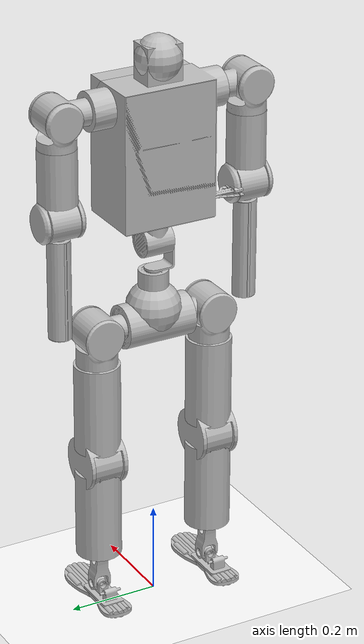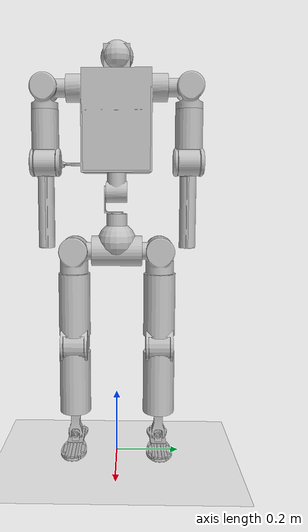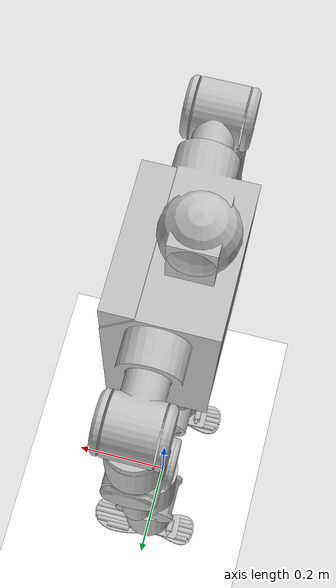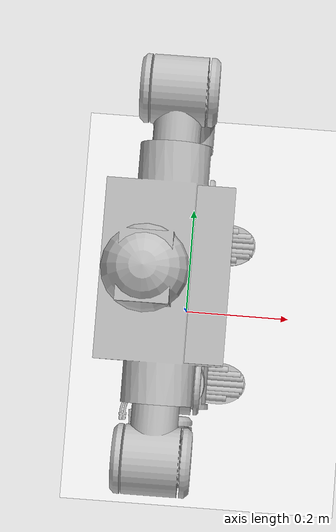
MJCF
<mujoco model="vt_human">
  <compiler angle="radian" meshdir="meshes/"/>

  <asset>
    <mesh name="base_link" content_type="model/stl" file="base_link.STL"/>
    <mesh name="left_hip_pitch_link" content_type="model/stl" file="left_hip_pitch_link.STL"/>
    <mesh name="left_hip_roll_link" content_type="model/stl" file="left_hip_roll_link.STL"/>
    <mesh name="left_hip_yaw_link" content_type="model/stl" file="left_hip_yaw_link.STL"/>
    <mesh name="left_knee_link" content_type="model/stl" file="left_knee_link.STL"/>
    <mesh name="left_ankle_pitch_link" content_type="model/stl" file="left_ankle_pitch_link.STL"/>
    <mesh name="left_ankle_roll_link" content_type="model/stl" file="left_ankle_roll_link.STL"/>
    <mesh name="right_hip_pitch_link" content_type="model/stl" file="right_hip_pitch_link.STL"/>
    <mesh name="right_hip_roll_link" content_type="model/stl" file="right_hip_roll_link.STL"/>
    <mesh name="right_hip_yaw_link" content_type="model/stl" file="right_hip_yaw_link.STL"/>
    <mesh name="right_knee_link" content_type="model/stl" file="right_knee_link.STL"/>
    <mesh name="right_ankle_pitch_link" content_type="model/stl" file="right_ankle_pitch_link.STL"/>
    <mesh name="right_ankle_roll_link" content_type="model/stl" file="right_ankle_roll_link.STL"/>
    <mesh name="waist_yaw_link" content_type="model/stl" file="waist_yaw_link.STL"/>
    <mesh name="waist_pitch_link" content_type="model/stl" file="waist_pitch_link.STL"/>
    <mesh name="left_shoulder_pitch_link" content_type="model/stl" file="left_shoulder_pitch_link.STL"/>
    <mesh name="left_shoulder_roll_link" content_type="model/stl" file="left_shoulder_roll_link.STL"/>
    <mesh name="left_shoulder_yaw_link" content_type="model/stl" file="left_shoulder_yaw_link.STL"/>
    <mesh name="left_elbow_link" content_type="model/stl" file="left_elbow_link.STL"/>
    <mesh name="right_shoulder_pitch_link" content_type="model/stl" file="right_shoulder_pitch_link.STL"/>
    <mesh name="right_shoulder_roll_link" content_type="model/stl" file="right_shoulder_roll_link.STL"/>
    <mesh name="right_shoulder_yaw_link" content_type="model/stl" file="right_shoulder_yaw_link.STL"/>
    <mesh name="right_elbow_link" content_type="model/stl" file="right_elbow_link.STL"/>

    <texture type="skybox" builtin="gradient" rgb1="1 1 1" rgb2="1 1 1" width="800" height="800"/>
    <texture type="2d" name="groundplane" builtin="checker" mark="edge" rgb1="1 1 1" rgb2="1 1 1" markrgb="0 0 0" width="300" height="300"/>
    <material name="groundplane" texture="groundplane" texuniform="true" texrepeat="5 5" reflectance="0"/>
    <texture type="skybox" builtin="gradient" rgb1=".4 .5 .6" rgb2="0 0 0" width="100" height="100"/>
    <texture builtin="flat" height="1278" mark="cross" markrgb="1 1 1" name="texgeom" random="0.01" rgb1="0.8 0.6 0.4" rgb2="0.8 0.6 0.4" type="cube" width="127"/>
    <texture name="texplane" builtin="checker" height="512" width="512" rgb1=".2 .3 .4" rgb2=".1 .15 .2" type="2d" />
    <material name="MatPlane" reflectance="0.5" shininess="0.01" specular="0.1" texrepeat="1 1" texture="texplane" texuniform="true" />
    <material name="geom" texture="texgeom" texuniform="true"/>
  </asset>

  <visual>
    <headlight diffuse="0.6 0.6 0.6" ambient="0.1 0.1 0.1" specular="0.9 0.9 0.9"/>
    <rgba haze="0.15 0.25 0.35 1"/>
    <global azimuth="-140" elevation="-20" offwidth="2080" offheight="1170"/>
  </visual>

  <worldbody>
    <geom name="floor" size="0 0 0.01" type="plane" material="groundplane" contype="1" conaffinity="0" priority="1" friction="0.6" condim="3"/>
    <light diffuse=".5 .5 .5" pos="-3 -3 5" dir="3 3 -5" castshadow="true"/>

    <body name="base_link" pos="0 0 0.66">
      <inertial pos="-5e-06 0 0.0106013" quat="0.707245 0.706968 0.000377602 -0.000368738" mass="3.09142" diaginertia="0.0113678 0.00894237 0.00579578"/>
      <joint type="free"/>
      <geom type="mesh" contype="0" conaffinity="0" group="1" density="0" rgba="0.75294 0.75294 0.75294 1" mesh="base_link"/>
      <geom name="collision_pelvis_sphere" size="0.06" pos="0 0 0.03" rgba="0.75294 0.75294 0.75294 1"/>
      <body name="left_hip_pitch_link" pos="0 0.075 0">
        <inertial pos="0.00461666 0.0573772 -1.967e-05" quat="0.709352 0.704625 -0.011681 -0.0136604" mass="1.22141" diaginertia="0.0012979 0.00106083 0.000917125"/>
        <joint name="left_hip_pitch_joint" pos="0 0 0" axis="0 1 0" range="-1.5705 3.0538" actuatorfrcrange="-90 90" armature="0.0101775"/>
        <geom type="mesh" contype="0" conaffinity="0" group="1" density="0" rgba="0.75294 0.75294 0.75294 1" mesh="left_hip_pitch_link"/>
        <geom type="mesh" rgba="0.75294 0.75294 0.75294 1" mesh="left_hip_pitch_link"/>
        <body name="left_hip_roll_link" pos="0 0.06 0">
          <inertial pos="0 0 -0.0355394" quat="0.5 0.5 0.5 0.5" mass="0.96841" diaginertia="0.00150118 0.00127831 0.00119014"/>
          <joint name="left_hip_roll_joint" pos="0 0 0" axis="1 0 0" range="-1.745 1.047" actuatorfrcrange="-90 90" armature="0.0101775"/>
          <geom type="mesh" contype="0" conaffinity="0" group="1" density="0" rgba="0.75294 0.75294 0.75294 1" mesh="left_hip_roll_link"/>
          <geom type="mesh" rgba="0.75294 0.75294 0.75294 1" mesh="left_hip_roll_link"/>
          <body name="left_hip_yaw_link" pos="0 0 -0.071">
            <inertial pos="-1.153e-05 -1.296e-05 -0.0980223" quat="0.999998 2.15521e-05 -3.66704e-05 -0.00174301" mass="2.11396" diaginertia="0.01751 0.0172375 0.00304217"/>
            <joint name="left_hip_yaw_joint" pos="0 0 0" axis="0 0 1" range="-1.5705 1.5705" actuatorfrcrange="-90 90" armature="0.0101775"/>
            <geom type="mesh" contype="0" conaffinity="0" group="1" density="0" rgba="0.75294 0.75294 0.75294 1" mesh="left_hip_yaw_link"/>
            <geom name="left_hip_yaw_link__collision_l_hip_yaw_cylinder" size="0.05 0.1" pos="0 0 -0.1" type="cylinder" rgba="0.75294 0.75294 0.75294 1"/>
            <body name="left_knee_link" pos="0 0 -0.229">
              <inertial pos="1.046e-05 0.00023893 -0.0579904" quat="0.70745 0.00129907 -0.00139523 0.706761" mass="2.35679" diaginertia="0.0179596 0.017109 0.00197104"/>
              <joint name="left_knee_joint" pos="0 0 0" axis="0 1 0" range="-0.08725 2.443" actuatorfrcrange="-120 120" armature="0.0251019"/>
              <geom type="mesh" contype="0" conaffinity="0" group="1" density="0" rgba="0.75294 0.75294 0.75294 1" mesh="left_knee_link"/>
              <geom name="collision_l_knee_cylinder" size="0.05 0.1" pos="0 0 -0.125" type="cylinder" rgba="0.75294 0.75294 0.75294 1"/>
              <body name="left_ankle_pitch_link" pos="0 0 -0.305">
                <inertial pos="0 0 0" quat="0.5 0.5 -0.5 0.5" mass="0.0218698" diaginertia="1.63e-06 1.34e-06 1.34e-06"/>
                <joint name="left_ankle_pitch_joint" pos="0 0 0" axis="0 1 0" range="-0.95975 0.61075" actuatorfrcrange="-70.5 70.5" armature="0.00721945"/>
                <geom type="mesh" contype="0" conaffinity="0" group="1" density="0" rgba="0.75294 0.75294 0.75294 1" mesh="left_ankle_pitch_link"/>
                <geom type="mesh" rgba="0.75294 0.75294 0.75294 1" mesh="left_ankle_pitch_link"/>
                <body name="left_ankle_roll_link">
                  <inertial pos="-0.00285861 0 -0.0226265" quat="0 0.72789 0 0.685694" mass="0.515238" diaginertia="0.00187474 0.00177571 0.000182449"/>
                  <joint name="left_ankle_roll_joint" pos="0 0 0" axis="1 0 0" range="-0.43625 0.43625" actuatorfrcrange="-70.5 70.5" armature="0.00721945"/>
                  <geom type="mesh" contype="0" conaffinity="0" group="1" density="0" rgba="0.75294 0.75294 0.75294 1" mesh="left_ankle_roll_link"/>
                  <geom name="collision_l_foot0_cylinder" size="0.008 0.025" pos="0.065 0.027 -0.028" quat="0.707105 0 0.707108 0" type="cylinder" rgba="0.75294 0.75294 0.75294 1"/>
                  <geom name="collision_l_foot1_cylinder" size="0.008 0.105" pos="0.01 0.018 -0.028" quat="0.707105 0 0.707108 0" type="cylinder" rgba="0.75294 0.75294 0.75294 1"/>
                  <geom name="collision_l_foot2_cylinder" size="0.008 0.11" pos="0.01 0.0117 -0.028" quat="0.707105 0 0.707108 0" type="cylinder" rgba="0.75294 0.75294 0.75294 1"/>
                  <geom name="left_ankle_roll_link__collision_l_foot3_cylinder" size="0.008 0.1125" pos="0.01 0 -0.028" quat="0.707105 0 0.707108 0" type="cylinder" rgba="0.75294 0.75294 0.75294 1"/>
                  <geom name="collision_l_foot4_cylinder" size="0.008 0.105" pos="0.01 -0.018 -0.028" quat="0.707105 0 0.707108 0" type="cylinder" rgba="0.75294 0.75294 0.75294 1"/>
                  <geom name="collision_l_foot6_cylinder" size="0.008 0.025" pos="0.065 -0.027 -0.028" quat="0.707105 0 0.707108 0" type="cylinder" rgba="0.75294 0.75294 0.75294 1"/>
                  <geom name="collision_l_foot5_cylinder" size="0.008 0.11" pos="0.01 -0.0117 -0.028" quat="0.707105 0 0.707108 0" type="cylinder" rgba="0.75294 0.75294 0.75294 1"/>
                  <body name="left_toe_link" pos="0.10 0 -0.028"/>
                  <body name="left_heel_link" pos="-0.09 0 -0.028"/>
                </body>
              </body>
            </body>
          </body>
        </body>
      </body>
      <body name="right_hip_pitch_link" pos="0 -0.075 0">
        <inertial pos="0.00461666 -0.0573772 1.967e-05" quat="0.709353 0.704625 0.0116755 0.0136548" mass="1.22141" diaginertia="0.0012979 0.00106083 0.000917125"/>
        <joint name="right_hip_pitch_joint" pos="0 0 0" axis="0 1 0" range="-1.5705 3.0538" actuatorfrcrange="-90 90" armature="0.0101775"/>
        <geom type="mesh" contype="0" conaffinity="0" group="1" density="0" rgba="0.75294 0.75294 0.75294 1" mesh="right_hip_pitch_link"/>
        <geom type="mesh" rgba="0.75294 0.75294 0.75294 1" mesh="right_hip_pitch_link"/>
        <body name="right_hip_roll_link" pos="0 -0.06 0">
          <inertial pos="0 0 -0.0355394" quat="0.5 0.5 0.5 0.5" mass="0.96841" diaginertia="0.00150118 0.00127831 0.00119014"/>
          <joint name="right_hip_roll_joint" pos="0 0 0" axis="1 0 0" range="-1.047 1.745" actuatorfrcrange="-90 90" armature="0.0101775"/>
          <geom type="mesh" contype="0" conaffinity="0" group="1" density="0" rgba="0.75294 0.75294 0.75294 1" mesh="right_hip_roll_link"/>
          <geom type="mesh" rgba="0.75294 0.75294 0.75294 1" mesh="right_hip_roll_link"/>
          <body name="right_hip_yaw_link" pos="0 0 -0.071">
            <inertial pos="1.153e-05 1.296e-05 -0.0980223" quat="0.999998 -2.15521e-05 3.66704e-05 -0.00174301" mass="2.11396" diaginertia="0.01751 0.0172375 0.00304217"/>
            <joint name="right_hip_yaw_joint" pos="0 0 0" axis="0 0 1" range="-1.5705 1.5705" actuatorfrcrange="-90 90" armature="0.0101775"/>
            <geom type="mesh" contype="0" conaffinity="0" group="1" density="0" rgba="0.75294 0.75294 0.75294 1" mesh="right_hip_yaw_link"/>
            <geom name="right_hip_yaw_link__collision_r_hip_yaw_cylinder" size="0.05 0.1" pos="0 0 -0.1" type="cylinder" rgba="0.75294 0.75294 0.75294 1"/>
            <body name="right_knee_link" pos="0 0 -0.229">
              <inertial pos="1.046e-05 -0.00090433 -0.057962" quat="0.70676 0.000567809 -0.000685212 0.707453" mass="2.35679" diaginertia="0.0179673 0.0171149 0.00196943"/>
              <joint name="right_knee_joint" pos="0 0 0" axis="0 1 0" range="-0.08725 2.443" actuatorfrcrange="-120 120" armature="0.0251019"/>
              <geom type="mesh" contype="0" conaffinity="0" group="1" density="0" rgba="0.75294 0.75294 0.75294 1" mesh="right_knee_link"/>
              <geom name="collision_r_knee_cylinder" size="0.05 0.1" pos="0 0 -0.125" type="cylinder" rgba="0.75294 0.75294 0.75294 1"/>
              <body name="right_ankle_pitch_link" pos="0 0 -0.305">
                <inertial pos="0 0 0" quat="0.5 0.5 -0.5 0.5" mass="0.0218698" diaginertia="1.63e-06 1.34e-06 1.34e-06"/>
                <joint name="right_ankle_pitch_joint" pos="0 0 0" axis="0 1 0" range="-0.95975 0.61075" actuatorfrcrange="-70.5 70.5" armature="0.00721945"/>
                <geom type="mesh" contype="0" conaffinity="0" group="1" density="0" rgba="0.75294 0.75294 0.75294 1" mesh="right_ankle_pitch_link"/>
                <geom type="mesh" rgba="0.75294 0.75294 0.75294 1" mesh="right_ankle_pitch_link"/>
                <body name="right_ankle_roll_link">
                  <inertial pos="-0.00285861 0 -0.0226265" quat="0 0.72789 0 0.685694" mass="0.515238" diaginertia="0.00187474 0.00177571 0.000182449"/>
                  <joint name="right_ankle_roll_joint" pos="0 0 0" axis="1 0 0" range="-0.43625 0.43625" actuatorfrcrange="-70.5 70.5" armature="0.00721945"/>
                  <geom type="mesh" contype="0" conaffinity="0" group="1" density="0" rgba="0.75294 0.75294 0.75294 1" mesh="right_ankle_roll_link"/>
                  <geom name="collision_r_foot0_cylinder" size="0.008 0.025" pos="0.065 0.027 -0.028" quat="0.707105 0 0.707108 0" type="cylinder" rgba="0.75294 0.75294 0.75294 1"/>
                  <geom name="collision_r_foot1_cylinder" size="0.008 0.105" pos="0.01 0.018 -0.028" quat="0.707105 0 0.707108 0" type="cylinder" rgba="0.75294 0.75294 0.75294 1"/>
                  <geom name="collision_r_foot2_cylinder" size="0.008 0.11" pos="0.01 0.0117 -0.028" quat="0.707105 0 0.707108 0" type="cylinder" rgba="0.75294 0.75294 0.75294 1"/>
                  <geom name="right_ankle_roll_link__collision_r_foot3_cylinder" size="0.008 0.1125" pos="0.01 0 -0.028" quat="0.707105 0 0.707108 0" type="cylinder" rgba="0.75294 0.75294 0.75294 1"/>
                  <geom name="collision_r_foot4_cylinder" size="0.008 0.11" pos="0.01 -0.0117 -0.028" quat="0.707105 0 0.707108 0" type="cylinder" rgba="0.75294 0.75294 0.75294 1"/>
                  <geom name="collision_r_foot5_cylinder" size="0.008 0.105" pos="0.01 -0.018 -0.028" quat="0.707105 0 0.707108 0" type="cylinder" rgba="0.75294 0.75294 0.75294 1"/>
                  <geom name="collision_r_foot6_cylinder" size="0.008 0.025" pos="0.065 -0.027 -0.028" quat="0.707105 0 0.707108 0" type="cylinder" rgba="0.75294 0.75294 0.75294 1"/>
                  <body name="right_toe_link" pos="0.10 0 -0.028"/>
                  <body name="right_heel_link" pos="-0.09 0 -0.028"/>
                </body>
              </body>
            </body>
          </body>
        </body>
      </body>
      <body name="waist_yaw_link" pos="0 0 0.11585">
        <inertial pos="0 -0.02571 0.033896" quat="0.980431 0.196862 0 0" mass="0.079287" diaginertia="8.721e-05 8.49544e-05 2.03656e-05"/>
        <joint name="waist_yaw_joint" pos="0 0 0" axis="0 0 1" range="-1.5705 1.5705" actuatorfrcrange="-70.5 70.5" armature="0.00721945"/>
        <geom type="mesh" contype="0" conaffinity="0" group="1" density="0" rgba="0.75294 0.75294 0.75294 1" mesh="waist_yaw_link"/>
        <geom type="mesh" rgba="0.75294 0.75294 0.75294 1" mesh="waist_yaw_link"/>
        <body name="waist_pitch_link" pos="0 0 0.068152">
          <inertial pos="-0.0047975 -0.0017375 0.22577" quat="0.999907 -0.00793288 0.0110553 -0.00106519" mass="10.228" diaginertia="0.233896 0.187717 0.0782784"/>
          <joint name="waist_pitch_joint" pos="0 0 0" axis="0 1 0" range="-0.78525 0.78525" actuatorfrcrange="-70.5 70.5" armature="0.00721945"/>
          <geom type="mesh" contype="0" conaffinity="0" group="1" density="0" rgba="0.75294 0.75294 0.75294 1" mesh="waist_pitch_link"/>
          <geom name="collision_body_box" size="0.075 0.103 0.15" pos="0 0 0.208519" type="box" rgba="0.75294 0.75294 0.75294 1"/>
          <geom name="collision_head_sphere" size="0.05" pos="-0.0207421 0 0.406951" rgba="0.75294 0.75294 0.75294 1"/>
          <body name="left_shoulder_pitch_link" pos="0 0.1505 0.313">
            <inertial pos="0.0014344 0.0618358 -2.104e-05" quat="0.707228 0.706908 -0.0052687 -0.00905545" mass="1.0695" diaginertia="0.00118018 0.00106548 0.000714539"/>
            <joint name="left_shoulder_pitch_joint" pos="0 0 0" axis="0 1 0" range="-1.5705 2.9665" actuatorfrcrange="-60 60" armature="0.00721945"/>
            <geom type="mesh" contype="0" conaffinity="0" group="1" density="0" rgba="0.75294 0.75294 0.75294 1" mesh="left_shoulder_pitch_link"/>
            <geom type="mesh" rgba="0.75294 0.75294 0.75294 1" mesh="left_shoulder_pitch_link"/>
            <body name="left_shoulder_roll_link" pos="0 0.0695 0">
              <inertial pos="-1.615e-05 0 -0.0668356" quat="0.707124 1.88764e-06 -1.88774e-06 0.707089" mass="1.39269" diaginertia="0.00340486 0.00300519 0.00153192"/>
              <joint name="left_shoulder_roll_joint" pos="0 0 0" axis="1 0 0" range="-0.08725 3.0538" actuatorfrcrange="-60 60" armature="0.00721945"/>
              <geom type="mesh" contype="0" conaffinity="0" group="1" density="0" rgba="0.75294 0.75294 0.75294 1" mesh="left_shoulder_roll_link"/>
              <geom type="mesh" rgba="0.75294 0.75294 0.75294 1" mesh="left_shoulder_roll_link"/>
              <body name="left_shoulder_yaw_link" pos="0 0 -0.1245">
                <inertial pos="0 0 -0.068828" mass="0.517423" diaginertia="0.00160883 0.00120849 0.00089467"/>
                <joint name="left_shoulder_yaw_joint" pos="0 0 0" axis="0 0 1" range="-1.5705 2.5303" actuatorfrcrange="-60 60" armature="0.00721945"/>
                <geom type="mesh" contype="0" conaffinity="0" group="1" density="0" rgba="0.75294 0.75294 0.75294 1" mesh="left_shoulder_yaw_link"/>
                <geom name="left_shoulder_yaw_link__collision_l_shoulder_yaw_cylinder" size="0.042 0.06" type="cylinder" rgba="0.75294 0.75294 0.75294 1"/>
                <body name="left_elbow_link" pos="0 0 -0.1">
                  <inertial pos="1.56e-06 0.00089624 -0.0347421" quat="0.707258 -0.00333744 0.00333593 0.706939" mass="1.19614" diaginertia="0.00682787 0.00671703 0.000753939"/>
                  <joint name="left_elbow_joint" pos="0 0 0" axis="0 1 0" range="-2.3558 0.5235" actuatorfrcrange="-60 60" armature="0.00721945"/>
                  <geom type="mesh" contype="0" conaffinity="0" group="1" density="0" rgba="0.75294 0.75294 0.75294 1" mesh="left_elbow_link"/>
                  <geom name="collision_l_elbow_cylinder" size="0.025 0.11" pos="0 0 -0.15" type="cylinder" rgba="0.75294 0.75294 0.75294 1"/>
                  <body name="left_wrist_task" pos="0 0 -0.18"/>
                </body>
              </body>
            </body>
          </body>
          <body name="right_shoulder_pitch_link" pos="0 -0.1505 0.313">
            <inertial pos="0.0011444 -0.061836 2.104e-05" quat="0.707228 0.706908 0.00526838 0.00905546" mass="1.0695" diaginertia="0.00118019 0.0010655 0.000714539"/>
            <joint name="right_shoulder_pitch_joint" pos="0 0 0" axis="0 1 0" range="-1.5705 2.9665" actuatorfrcrange="-60 60" armature="0.00721945"/>
            <geom type="mesh" contype="0" conaffinity="0" group="1" density="0" rgba="0.75294 0.75294 0.75294 1" mesh="right_shoulder_pitch_link"/>
            <geom type="mesh" rgba="0.75294 0.75294 0.75294 1" mesh="right_shoulder_pitch_link"/>
            <body name="right_shoulder_roll_link" pos="0 -0.0695 0">
              <inertial pos="1.615e-05 0 -0.066836" quat="0.707124 5.31152e-06 9.087e-06 0.707089" mass="1.3927" diaginertia="0.0034049 0.0030052 0.0015319"/>
              <joint name="right_shoulder_roll_joint" pos="0 0 0" axis="1 0 0" range="-3.0538 0.08725" actuatorfrcrange="-60 60" armature="0.00721945"/>
              <geom type="mesh" contype="0" conaffinity="0" group="1" density="0" rgba="0.75294 0.75294 0.75294 1" mesh="right_shoulder_roll_link"/>
              <geom type="mesh" rgba="0.75294 0.75294 0.75294 1" mesh="right_shoulder_roll_link"/>
              <body name="right_shoulder_yaw_link" pos="0 0 -0.1245">
                <inertial pos="0 0 -0.068828" mass="0.51742" diaginertia="0.0016088 0.0012085 0.00089467"/>
                <joint name="right_shoulder_yaw_joint" pos="0 0 0" axis="0 0 1" range="-1.5705 2.5303" actuatorfrcrange="-60 60" armature="0.00721945"/>
                <geom type="mesh" contype="0" conaffinity="0" group="1" density="0" rgba="0.75294 0.75294 0.75294 1" mesh="right_shoulder_yaw_link"/>
                <geom name="right_shoulder_yaw_link__collision_r_shoulder_yaw_cylinder" size="0.042 0.06" type="cylinder" rgba="0.75294 0.75294 0.75294 1"/>
                <body name="right_elbow_link" pos="0 0 -0.1">
                  <inertial pos="1.21e-06 -0.00089624 -0.034705" quat="0.70694 0.00326441 -0.00326588 0.707259" mass="1.1961" diaginertia="0.00683102 0.0067202 0.000753962"/>
                  <joint name="right_elbow_joint" pos="0 0 0" axis="0 1 0" range="-2.3558 0.5235" actuatorfrcrange="-60 60" armature="0.00721945"/>
                  <geom type="mesh" contype="0" conaffinity="0" group="1" density="0" rgba="0.75294 0.75294 0.75294 1" mesh="right_elbow_link"/>
                  <geom name="collision_r_elbow_cylinder" size="0.025 0.11" pos="0 0 -0.15" type="cylinder" rgba="0.75294 0.75294 0.75294 1"/>
                  <body name="right_wrist_task" pos="0 0 -0.18"/>
                </body>
              </body>
            </body>
          </body>
        </body>
      </body>
    </body>
  </worldbody>
</mujoco>
